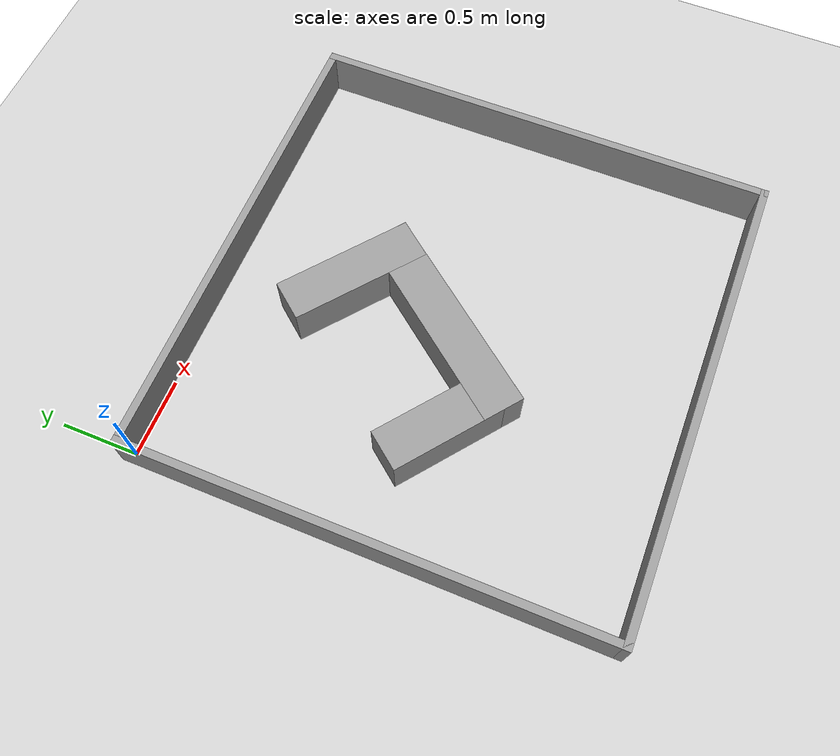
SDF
<sdf version="1.6">
 <world name="default">
  <light name="sun" type="directional">
   <pose>0 0 10 0 -0 0</pose>
   <diffuse>0.8 0.8 0.8 1</diffuse>
   <specular>0.1 0.1 0.1 1</specular>
   <attenuation>
    <range>1000</range>
    <constant>0.9</constant>
    <linear>0.01</linear>
    <quadratic>0.001</quadratic>
   </attenuation>
   <direction>-0.5 0.5 -1</direction>
  </light>
  <model name="ground_plane">
   <static>1</static>
   <link name="link">
    <collision name="collision">
     <geometry><plane><normal>0 0 1</normal><size>100 100</size></plane></geometry>
     <surface><friction><ode><mu>100</mu><mu2>50</mu2></ode></friction></surface>
    </collision>
    <visual name="visual">
     <cast_shadows>0</cast_shadows>
     <geometry><plane><normal>0 0 1</normal><size>100 100</size></plane></geometry>
     <material>
      <script><uri>file://media/materials/scripts/gazebo.material</uri><name>Gazebo/Grey</name></script>
     </material>
    </visual>
   </link>
  </model>
  <gravity>0 0 -9.8</gravity>
  <magnetic_field>6e-06 2.3e-05 -4.2e-05</magnetic_field>
  <atmosphere type="adiabatic"/>
  <physics name="default_physics" default="0" type="ode">
   <max_step_size>0.001</max_step_size>
   <real_time_factor>1</real_time_factor>
   <real_time_update_rate>1000.0</real_time_update_rate>
  </physics>
  <scene><ambient>0.4 0.4 0.4 1</ambient><background>0.7 0.7 0.7 1</background><shadows>1</shadows></scene>
  <spherical_coordinates>
   <surface_model>EARTH_WGS84</surface_model>
   <latitude_deg>0</latitude_deg>
   <longitude_deg>0</longitude_deg>
   <elevation>0</elevation>
   <heading_deg>0</heading_deg>
  </spherical_coordinates>
  <model name="Mundo_U">
   <pose>1.49072 -1.49116 0 0 -0 0</pose>
   <link name="Wall_0">
    <collision name="Wall_0_Collision">
     <geometry><box><size>3.1 0.05 0.3</size></box></geometry>
     <pose>0 0 0.15 0 -0 0</pose>
    </collision>
    <visual name="Wall_0_Visual">
     <pose>0 0 0.15 0 -0 0</pose>
     <geometry><box><size>3.1 0.05 0.3</size></box></geometry>
     <material>
      <script><uri>file://media/materials/scripts/gazebo.material</uri><name>Gazebo/Grey</name></script>
      <ambient>1 1 1 1</ambient>
     </material>
    </visual>
    <pose>0 1.525 0 0 -0 0</pose>
   </link>
   <link name="Wall_12">
    <collision name="Wall_12_Collision">
     <geometry><box><size>1.39921 0.27 0.3</size></box></geometry>
     <pose>0 0 0.15 0 -0 0</pose>
    </collision>
    <visual name="Wall_12_Visual">
     <pose>0 0 0.15 0 -0 0</pose>
     <geometry><box><size>1.39921 0.27 0.3</size></box></geometry>
     <material>
      <script><uri>file://media/materials/scripts/gazebo.material</uri><name>Gazebo/Grey</name></script>
      <ambient>1 1 1 1</ambient>
     </material>
    </visual>
    <pose>-0.0875 0.077 0 0 -0 0.907811</pose>
   </link>
   <link name="Wall_16">
    <collision name="Wall_16_Collision">
     <geometry><box><size>0.8721 0.27 0.3</size></box></geometry>
     <pose>0 0 0.15 0 -0 0</pose>
    </collision>
    <visual name="Wall_16_Visual">
     <pose>0 0 0.15 0 -0 0</pose>
     <geometry><box><size>0.8721 0.27 0.3</size></box></geometry>
     <material>
      <script><uri>file://media/materials/scripts/gazebo.material</uri><name>Gazebo/Grey</name></script>
      <ambient>1 1 1 1</ambient>
     </material>
    </visual>
    <pose>-0.6725 -0.183 0 0 -0 2.47982</pose>
   </link>
   <link name="Wall_18">
    <collision name="Wall_18_Collision">
     <geometry><box><size>0.910312 0.27 0.3</size></box></geometry>
     <pose>0 0 0.15 0 -0 0</pose>
    </collision>
    <visual name="Wall_18_Visual">
     <pose>0 0 0.15 0 -0 0</pose>
     <geometry><box><size>0.910312 0.27 0.3</size></box></geometry>
     <material>
      <script><uri>file://media/materials/scripts/gazebo.material</uri><name>Gazebo/Grey</name></script>
      <ambient>1 1 1 1</ambient>
     </material>
    </visual>
    <pose>0.01 0.722 0 0 -0 2.46685</pose>
   </link>
   <link name="Wall_2">
    <collision name="Wall_2_Collision">
     <geometry><box><size>3.1 0.05 0.3</size></box></geometry>
     <pose>0 0 0.15 0 -0 0</pose>
    </collision>
    <visual name="Wall_2_Visual">
     <pose>0 0 0.15 0 -0 0</pose>
     <geometry><box><size>3.1 0.05 0.3</size></box></geometry>
     <material>
      <script><uri>file://media/materials/scripts/gazebo.material</uri><name>Gazebo/Grey</name></script>
      <ambient>1 1 1 1</ambient>
     </material>
    </visual>
    <pose>1.525 0 0 0 0 -1.5708</pose>
   </link>
   <link name="Wall_4">
    <collision name="Wall_4_Collision">
     <geometry><box><size>3.1 0.05 0.3</size></box></geometry>
     <pose>0 0 0.15 0 -0 0</pose>
    </collision>
    <visual name="Wall_4_Visual">
     <pose>0 0 0.15 0 -0 0</pose>
     <geometry><box><size>3.1 0.05 0.3</size></box></geometry>
     <material>
      <script><uri>file://media/materials/scripts/gazebo.material</uri><name>Gazebo/Grey</name></script>
      <ambient>1 1 1 1</ambient>
     </material>
    </visual>
    <pose>0 -1.525 0 0 -0 3.14159</pose>
   </link>
   <link name="Wall_6">
    <collision name="Wall_6_Collision">
     <geometry><box><size>3.1 0.05 0.3</size></box></geometry>
     <pose>0 0 0.15 0 -0 0</pose>
    </collision>
    <visual name="Wall_6_Visual">
     <pose>0 0 0.15 0 -0 0</pose>
     <geometry><box><size>3.1 0.05 0.3</size></box></geometry>
     <material>
      <script><uri>file://media/materials/scripts/gazebo.material</uri><name>Gazebo/Grey</name></script>
      <ambient>1 1 1 1</ambient>
     </material>
    </visual>
    <pose>-1.525 0 0 0 -0 1.5708</pose>
   </link>
   <static>1</static>
  </model>
 </world>
</sdf>
